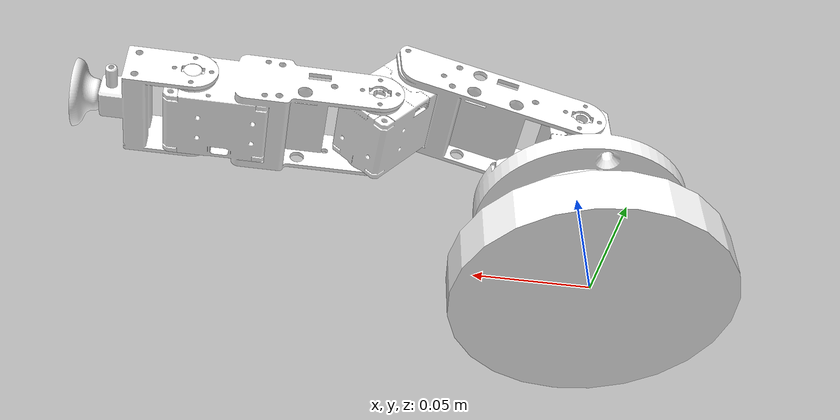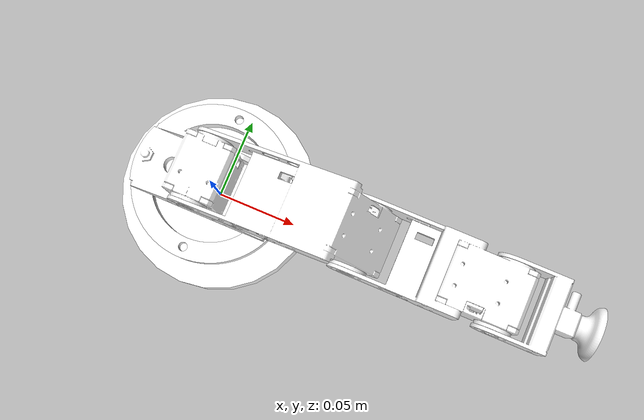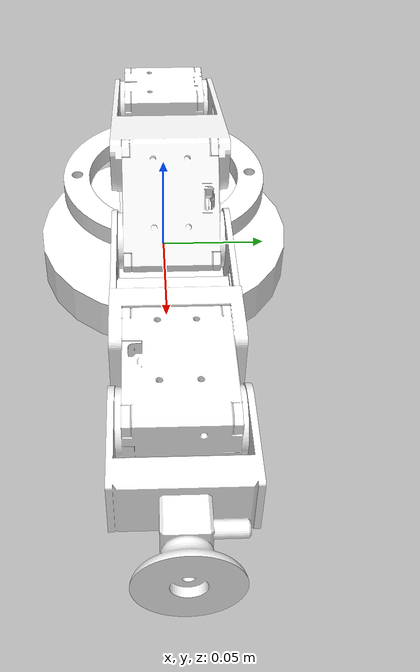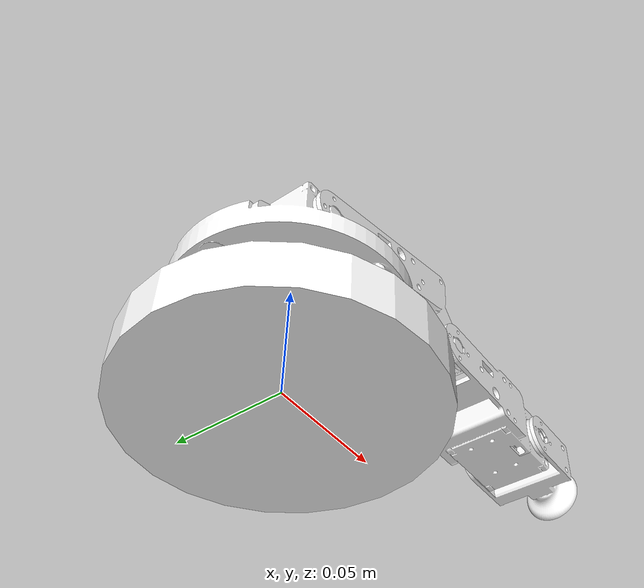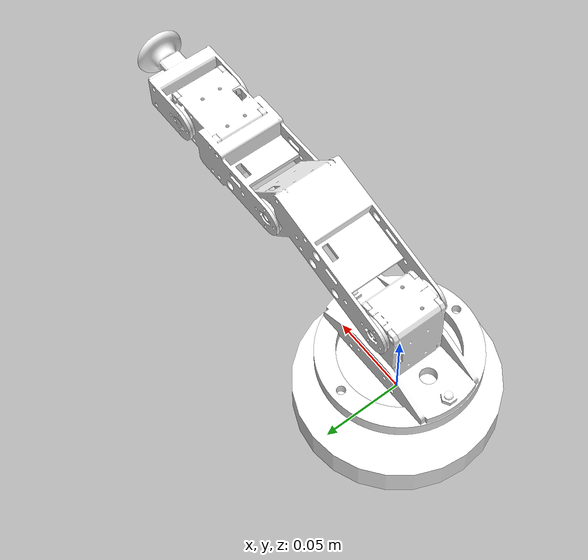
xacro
<?xml version="1.0" ?>
<robot name="jk_arm" xmlns:xacro="http://ros.org/wiki/xacro">

	<xacro:include filename="$(find jk_rollin_description)/urdf/common_properties.xacro"/>
	<xacro:include filename="$(find jk_rollin_description)/urdf/jk_arm.xacro"/>
	<xacro:include filename="$(find jk_rollin_description)/urdf/jk_arm.gazebo.xacro"/>

	<xacro:jk_arm link_prefix="arm_base"/>

	<link name="base_footprint">
		<visual>
			<geometry>
				<cylinder length="0.02" radius="0.06"/>
			</geometry>
			<material name="white"/>
		</visual>
	</link>

	<joint name="setup_to_arm" type="fixed">
		<parent link="base_footprint"/>
		<child link="arm_base_link"/>
		<origin xyz="0.0 0 0.0"/>
	</joint>

</robot>

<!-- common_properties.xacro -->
<robot name="xacro_properties" xmlns:xacro="http://ros.org/wiki/xacro">

	<xacro:property name="m_PI" value="3.1415926535897932"/>

  <!-- Init colour -->
  <material name="black">
      <color rgba="0.0 0.0 0.0 1.0"/>
  </material>

  <material name="dark">
    <color rgba="0.3 0.3 0.3 1.0"/>
  </material>
  <material name="light_black">
    <color rgba="0.4 0.4 0.4 1.0"/>
  </material>

  <material name="blue">
    <color rgba="0.0 0.0 0.8 1.0"/>
  </material>

  <material name="green">
    <color rgba="0.0 0.8 0.0 1.0"/>
  </material>

  <material name="grey">
    <color rgba="0.5 0.5 0.5 1.0"/>
  </material>

  <material name="orange">
    <color rgba="${255/255} ${108/255} ${10/255} 1.0"/>
  </material>

  <material name="brown">
    <color rgba="${222/255} ${207/255} ${195/255} 1.0"/>
  </material>

  <material name="red">
    <color rgba="0.8 0.0 0.0 1.0"/>
  </material>

  <material name="white">
    <color rgba="1.0 1.0 1.0 1.0"/>
  </material>

</robot>

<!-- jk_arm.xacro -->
<robot name="jk_arm" xmlns:xacro="http://www.ros.org/wiki/xacro">

	<xacro:macro name="jk_arm" params="link_prefix">
		<link name="${link_prefix}_link">
			<inertial>
				<origin xyz="0 0 0.04" />
				<mass value="0.289" />
				<inertia ixx="424.539e-06" ixy="0.0" ixz="0.0"
					 iyy="424.539e-06" iyz="0.0"
					 izz="845.383e-06" />
			</inertial>

		</link>

		<link name="shoulder_link">
			<visual>
				<origin xyz="0.0 0.0 0.0" rpy="0.0 0.0 ${m_PI/2}"/>
				<geometry>
					<mesh filename="package://jk_rollin_description/meshes/arm/shoulder.stl" scale="0.001 0.001 0.001"/>
				</geometry>
				<material name="white"/>
			</visual>
			<collision>
				 <geometry>
                                        <cylinder length="0.02" radius="0.06"/>
                                </geometry>
				<origin rpy="0 0 0" xyz="0.0 0.0 0.005"/>
			</collision>
			<collision>
				<geometry>
					<box size="0.03 0.044 0.050"/>
				</geometry>
				<origin rpy="0 0 0" xyz="0.0 0.0 0.035"/>
			</collision>
			<inertial>
				<origin xyz="0 0 0" rpy="0.0 0.0 ${m_PI/2}" />
				<mass value="0.290" />
				<inertia ixx="258.780e-06" ixy="0.006e-06" ixz="0.624e-06"
					 iyy="233.757e-06" iyz="0.018e-06"
					 izz="403.664e-06" />
			</inertial>

		</link>

		<joint name="turntable"  type="revolute">
			<parent link="${link_prefix}_link"/>
			<child link="shoulder_link"/>
			<axis xyz="0 0 1"/>
			<origin xyz="0.0 0 0.035" rpy="0 0 0"/>
			<limit effort="20.0" lower="${-m_PI}" upper="${m_PI}" velocity="${m_PI}"/>
			<dynamics friction="0.1"/>
		</joint>

		<link name="upper_arm">
			<visual>
				<origin xyz="0.0 0 0.0" rpy="${-m_PI/2} 0 0"/>
				<geometry>
					<mesh filename="package://jk_rollin_description/meshes/arm/upper_arm.stl" scale="0.001 0.001 0.001"/>
				</geometry>
				<material name="white"/>
			</visual>
			<collision>
				<geometry>
					<box size="0.10 0.03 0.044"/>
				</geometry>
				<origin rpy="0 0 -0.3" xyz="0.035 -0.015 0.0"/>
			</collision>
			<collision>
				<geometry>
					<box size="0.05 0.03 0.044"/>
				</geometry>
				<origin rpy="0 0 0.85" xyz="0.083 -0.01 0.0"/>
			</collision>
			<inertial>
				<origin xyz="0 0 0" rpy="${m_PI/2} 0 0" />
				<mass value="0.074" />
				<inertia ixx="20.267e-06" ixy="0.306e-06" ixz="2.968e-06"
					 iyy="47.257e-06" iyz="-0.100e-06"
					 izz="49.239e-06" />
			</inertial>

		</link>

		<joint name="shoulder" type="revolute">
			<parent link="shoulder_link"/>
			<child link="upper_arm"/>
			<axis xyz="0 0 1"/>
			<origin xyz="0.0 0 0.04705" rpy="${m_PI/2} 0.0 0"/>
			<limit effort="20.0" lower="-1.7" upper="1.7" velocity="${m_PI}"/>
			<dynamics friction="0.1"/>
		</joint>

		<link name="forearm">
			<visual>
				<origin xyz="0.018 0 0.0" rpy="${m_PI/2} 0 0"/>
				<geometry>
					<mesh filename="package://jk_rollin_description/meshes/arm/forearm.stl" scale="0.001 0.001 0.001"/>
				</geometry>
				<material name="white"/>
			</visual>
			<collision>
				<geometry>
					<box size="0.10 0.03 0.044"/>
				</geometry>
				<origin rpy="0 0 0" xyz="0.05 0.0 0.0"/>
			</collision>
			<inertial>
				<origin xyz="0.018 0 0" rpy="${m_PI/2} 0 0" />
				<mass value="0.067" />
				<inertia ixx="13.999e-06" ixy="0.356e-06" ixz="0.018e-06"
					 iyy="32.745e-06" iyz="0.006e-06"
					 izz="38.629e-06" />
			</inertial>

		</link>

		<joint name="elbow" type="revolute">
			<parent link="upper_arm"/>
			<child link="forearm"/>
			<axis xyz="0 0 1"/>
			<origin xyz="0.09279 0 0.0" rpy="0 0 0"/>
			<limit effort="20.0" lower="-1.5" upper="2.87" velocity="${m_PI}"/>
			<dynamics friction="0.1"/>
		</joint>

		<link name="finger">
			<visual>
				<origin xyz="0.003 0 0.0" rpy="${m_PI/2} 0 0"/>
				<geometry>
					<mesh filename="package://jk_rollin_description/meshes/arm/finger.stl" scale="0.001 0.001 0.001"/>
				</geometry>
				<material name="white"/>
			</visual>
			<collision>
				<geometry>
					<box size="0.06 0.03 0.044"/>
				</geometry>
				<origin rpy="0 0 0" xyz="0.03 0.0 0.0"/>
			</collision>
			<inertial>
				<origin xyz="0.003 0 0" rpy="${m_PI/2} 0 0" />
				<mass value="0.033" />
				<inertia ixx="5.376e-06" ixy="0.035e-06" ixz="0.0e-06"
					 iyy="4.870e-06" iyz="0.0e-06"
					 izz="7.870e-06" />
			</inertial>

		</link>

		<joint name="wrist" type="revolute">
			<parent link="forearm"/>
			<child link="finger"/>
			<axis xyz="0 0 1"/>
			<origin xyz="0.08225 0 0.0" rpy="0 0 0"/>
			<limit effort="20.0" lower="-2.0" upper="2.0" velocity="${m_PI}"/>
			<dynamics friction="0.1"/>
		</joint>

		<link name="vacuum_cup">
			<inertial>
				<origin xyz="0 0 0" />
				<mass value="0.003" />
				<inertia ixx="0.154e-06" ixy="0.0e-06" ixz="0.0e-06"
					 iyy="0.261e-06" iyz="0.0e-06"
					 izz="0.154e-06" />
			</inertial>

		</link>

		<joint name="gripper" type="fixed">
			<parent link="finger"/>
			<child link="vacuum_cup"/>
			<origin xyz="0.051 0 0.0" rpy="0 0 0"/>
		</joint>

	</xacro:macro>

</robot>
